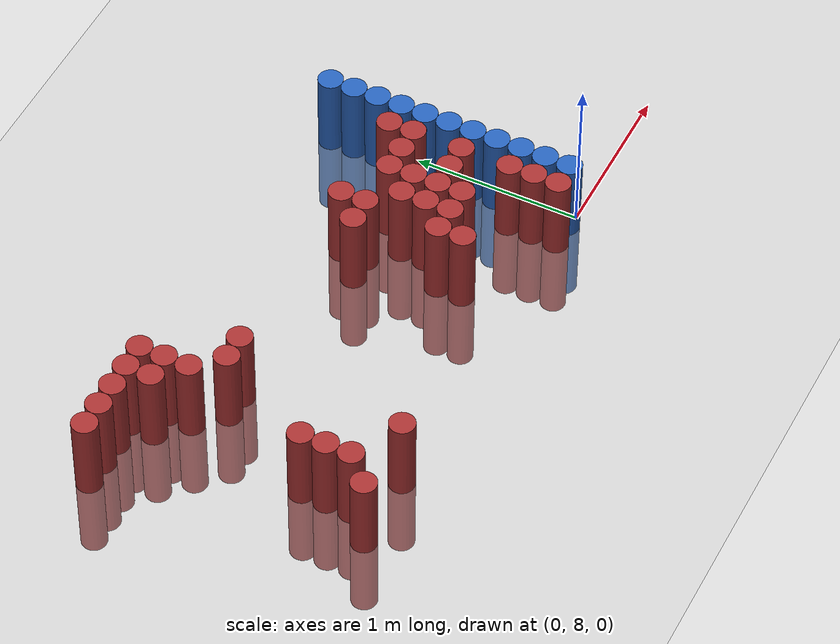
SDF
<sdf version="1.6">
 <world name="default">
  <model name="ground_plane">
   <static>1</static>
   <link name="link">
    <collision name="collision">
     <geometry><plane><normal>0 0 1</normal><size>100 100</size></plane></geometry>
     <surface><friction><ode><mu>100</mu><mu2>50</mu2></ode></friction></surface>
    </collision>
    <visual name="visual">
     <cast_shadows>0</cast_shadows>
     <geometry><plane><normal>0 0 1</normal><size>100 100</size></plane></geometry>
     <material>
      <script><uri>file://media/materials/scripts/gazebo.material</uri><name>Gazebo/Grey</name></script>
     </material>
    </visual>
   </link>
  </model>
  <model name="unit_cylinder_174">
   <static>1</static>
   <pose>-2.925000 9.525000 0.000000 0.000000 0.000000 0.000000</pose>
   <link name="link">
    <inertial>
     <mass>1</mass>
     <inertia><ixx>0.145833</ixx><ixy>0</ixy><ixz>0</ixz><iyy>0.145833</iyy><iyz>0</iyz><izz>0.125</izz></inertia>
    </inertial>
    <collision name="collision">
     <geometry><cylinder><radius>0.075000</radius><length>1</length></cylinder></geometry>
    </collision>
    <visual name="visual">
     <geometry><cylinder><radius>0.075000</radius><length>1</length></cylinder></geometry>
     <material>
      <ambient>0.648000 0.192000 0.192000 1</ambient>
      <diffuse>0.648000 0.192000 0.192000 1</diffuse>
     </material>
     <material>
      <script><name>Gazebo/Grey</name><uri>file://media/materials/scripts/gazebo.material</uri></script>
     </material>
    </visual>
   </link>
  </model>
  <model name="unit_cylinder_177">
   <static>1</static>
   <pose>-2.775000 9.525000 0.000000 0.000000 0.000000 0.000000</pose>
   <link name="link">
    <inertial>
     <mass>1</mass>
     <inertia><ixx>0.145833</ixx><ixy>0</ixy><ixz>0</ixz><iyy>0.145833</iyy><iyz>0</iyz><izz>0.125</izz></inertia>
    </inertial>
    <collision name="collision">
     <geometry><cylinder><radius>0.075000</radius><length>1</length></cylinder></geometry>
    </collision>
    <visual name="visual">
     <geometry><cylinder><radius>0.075000</radius><length>1</length></cylinder></geometry>
     <material>
      <ambient>0.648000 0.192000 0.192000 1</ambient>
      <diffuse>0.648000 0.192000 0.192000 1</diffuse>
     </material>
     <material>
      <script><name>Gazebo/Grey</name><uri>file://media/materials/scripts/gazebo.material</uri></script>
     </material>
    </visual>
   </link>
  </model>
  <model name="unit_cylinder_178">
   <static>1</static>
   <pose>-2.625000 8.025000 0.000000 0.000000 0.000000 0.000000</pose>
   <link name="link">
    <inertial>
     <mass>1</mass>
     <inertia><ixx>0.145833</ixx><ixy>0</ixy><ixz>0</ixz><iyy>0.145833</iyy><iyz>0</iyz><izz>0.125</izz></inertia>
    </inertial>
    <collision name="collision">
     <geometry><cylinder><radius>0.075000</radius><length>1</length></cylinder></geometry>
    </collision>
    <visual name="visual">
     <geometry><cylinder><radius>0.075000</radius><length>1</length></cylinder></geometry>
     <material>
      <ambient>0.648000 0.192000 0.192000 1</ambient>
      <diffuse>0.648000 0.192000 0.192000 1</diffuse>
     </material>
     <material>
      <script><name>Gazebo/Grey</name><uri>file://media/materials/scripts/gazebo.material</uri></script>
     </material>
    </visual>
   </link>
  </model>
  <model name="unit_cylinder_179">
   <static>1</static>
   <pose>-2.625000 9.525000 0.000000 0.000000 0.000000 0.000000</pose>
   <link name="link">
    <inertial>
     <mass>1</mass>
     <inertia><ixx>0.145833</ixx><ixy>0</ixy><ixz>0</ixz><iyy>0.145833</iyy><iyz>0</iyz><izz>0.125</izz></inertia>
    </inertial>
    <collision name="collision">
     <geometry><cylinder><radius>0.075000</radius><length>1</length></cylinder></geometry>
    </collision>
    <visual name="visual">
     <geometry><cylinder><radius>0.075000</radius><length>1</length></cylinder></geometry>
     <material>
      <ambient>0.648000 0.192000 0.192000 1</ambient>
      <diffuse>0.648000 0.192000 0.192000 1</diffuse>
     </material>
     <material>
      <script><name>Gazebo/Grey</name><uri>file://media/materials/scripts/gazebo.material</uri></script>
     </material>
    </visual>
   </link>
  </model>
  <model name="unit_cylinder_180">
   <static>1</static>
   <pose>-2.475000 8.175000 0.000000 0.000000 0.000000 0.000000</pose>
   <link name="link">
    <inertial>
     <mass>1</mass>
     <inertia><ixx>0.145833</ixx><ixy>0</ixy><ixz>0</ixz><iyy>0.145833</iyy><iyz>0</iyz><izz>0.125</izz></inertia>
    </inertial>
    <collision name="collision">
     <geometry><cylinder><radius>0.075000</radius><length>1</length></cylinder></geometry>
    </collision>
    <visual name="visual">
     <geometry><cylinder><radius>0.075000</radius><length>1</length></cylinder></geometry>
     <material>
      <ambient>0.648000 0.192000 0.192000 1</ambient>
      <diffuse>0.648000 0.192000 0.192000 1</diffuse>
     </material>
     <material>
      <script><name>Gazebo/Grey</name><uri>file://media/materials/scripts/gazebo.material</uri></script>
     </material>
    </visual>
   </link>
  </model>
  <model name="unit_cylinder_181">
   <static>1</static>
   <pose>-2.475000 8.325000 0.000000 0.000000 0.000000 0.000000</pose>
   <link name="link">
    <inertial>
     <mass>1</mass>
     <inertia><ixx>0.145833</ixx><ixy>0</ixy><ixz>0</ixz><iyy>0.145833</iyy><iyz>0</iyz><izz>0.125</izz></inertia>
    </inertial>
    <collision name="collision">
     <geometry><cylinder><radius>0.075000</radius><length>1</length></cylinder></geometry>
    </collision>
    <visual name="visual">
     <geometry><cylinder><radius>0.075000</radius><length>1</length></cylinder></geometry>
     <material>
      <ambient>0.648000 0.192000 0.192000 1</ambient>
      <diffuse>0.648000 0.192000 0.192000 1</diffuse>
     </material>
     <material>
      <script><name>Gazebo/Grey</name><uri>file://media/materials/scripts/gazebo.material</uri></script>
     </material>
    </visual>
   </link>
  </model>
  <model name="unit_cylinder_182">
   <static>1</static>
   <pose>-2.475000 8.475000 0.000000 0.000000 0.000000 0.000000</pose>
   <link name="link">
    <inertial>
     <mass>1</mass>
     <inertia><ixx>0.145833</ixx><ixy>0</ixy><ixz>0</ixz><iyy>0.145833</iyy><iyz>0</iyz><izz>0.125</izz></inertia>
    </inertial>
    <collision name="collision">
     <geometry><cylinder><radius>0.075000</radius><length>1</length></cylinder></geometry>
    </collision>
    <visual name="visual">
     <geometry><cylinder><radius>0.075000</radius><length>1</length></cylinder></geometry>
     <material>
      <ambient>0.648000 0.192000 0.192000 1</ambient>
      <diffuse>0.648000 0.192000 0.192000 1</diffuse>
     </material>
     <material>
      <script><name>Gazebo/Grey</name><uri>file://media/materials/scripts/gazebo.material</uri></script>
     </material>
    </visual>
   </link>
  </model>
  <model name="unit_cylinder_183">
   <static>1</static>
   <pose>-2.475000 9.375000 0.000000 0.000000 0.000000 0.000000</pose>
   <link name="link">
    <inertial>
     <mass>1</mass>
     <inertia><ixx>0.145833</ixx><ixy>0</ixy><ixz>0</ixz><iyy>0.145833</iyy><iyz>0</iyz><izz>0.125</izz></inertia>
    </inertial>
    <collision name="collision">
     <geometry><cylinder><radius>0.075000</radius><length>1</length></cylinder></geometry>
    </collision>
    <visual name="visual">
     <geometry><cylinder><radius>0.075000</radius><length>1</length></cylinder></geometry>
     <material>
      <ambient>0.648000 0.192000 0.192000 1</ambient>
      <diffuse>0.648000 0.192000 0.192000 1</diffuse>
     </material>
     <material>
      <script><name>Gazebo/Grey</name><uri>file://media/materials/scripts/gazebo.material</uri></script>
     </material>
    </visual>
   </link>
  </model>
  <model name="unit_cylinder_184">
   <static>1</static>
   <pose>-2.475000 9.525000 0.000000 0.000000 0.000000 0.000000</pose>
   <link name="link">
    <inertial>
     <mass>1</mass>
     <inertia><ixx>0.145833</ixx><ixy>0</ixy><ixz>0</ixz><iyy>0.145833</iyy><iyz>0</iyz><izz>0.125</izz></inertia>
    </inertial>
    <collision name="collision">
     <geometry><cylinder><radius>0.075000</radius><length>1</length></cylinder></geometry>
    </collision>
    <visual name="visual">
     <geometry><cylinder><radius>0.075000</radius><length>1</length></cylinder></geometry>
     <material>
      <ambient>0.648000 0.192000 0.192000 1</ambient>
      <diffuse>0.648000 0.192000 0.192000 1</diffuse>
     </material>
     <material>
      <script><name>Gazebo/Grey</name><uri>file://media/materials/scripts/gazebo.material</uri></script>
     </material>
    </visual>
   </link>
  </model>
  <model name="unit_cylinder_187">
   <static>1</static>
   <pose>-2.325000 9.225000 0.000000 0.000000 0.000000 0.000000</pose>
   <link name="link">
    <inertial>
     <mass>1</mass>
     <inertia><ixx>0.145833</ixx><ixy>0</ixy><ixz>0</ixz><iyy>0.145833</iyy><iyz>0</iyz><izz>0.125</izz></inertia>
    </inertial>
    <collision name="collision">
     <geometry><cylinder><radius>0.075000</radius><length>1</length></cylinder></geometry>
    </collision>
    <visual name="visual">
     <geometry><cylinder><radius>0.075000</radius><length>1</length></cylinder></geometry>
     <material>
      <ambient>0.648000 0.192000 0.192000 1</ambient>
      <diffuse>0.648000 0.192000 0.192000 1</diffuse>
     </material>
     <material>
      <script><name>Gazebo/Grey</name><uri>file://media/materials/scripts/gazebo.material</uri></script>
     </material>
    </visual>
   </link>
  </model>
  <model name="unit_cylinder_188">
   <static>1</static>
   <pose>-2.325000 9.375000 0.000000 0.000000 0.000000 0.000000</pose>
   <link name="link">
    <inertial>
     <mass>1</mass>
     <inertia><ixx>0.145833</ixx><ixy>0</ixy><ixz>0</ixz><iyy>0.145833</iyy><iyz>0</iyz><izz>0.125</izz></inertia>
    </inertial>
    <collision name="collision">
     <geometry><cylinder><radius>0.075000</radius><length>1</length></cylinder></geometry>
    </collision>
    <visual name="visual">
     <geometry><cylinder><radius>0.075000</radius><length>1</length></cylinder></geometry>
     <material>
      <ambient>0.648000 0.192000 0.192000 1</ambient>
      <diffuse>0.648000 0.192000 0.192000 1</diffuse>
     </material>
     <material>
      <script><name>Gazebo/Grey</name><uri>file://media/materials/scripts/gazebo.material</uri></script>
     </material>
    </visual>
   </link>
  </model>
  <model name="unit_cylinder_189">
   <static>1</static>
   <pose>-2.325000 9.525000 0.000000 0.000000 0.000000 0.000000</pose>
   <link name="link">
    <inertial>
     <mass>1</mass>
     <inertia><ixx>0.145833</ixx><ixy>0</ixy><ixz>0</ixz><iyy>0.145833</iyy><iyz>0</iyz><izz>0.125</izz></inertia>
    </inertial>
    <collision name="collision">
     <geometry><cylinder><radius>0.075000</radius><length>1</length></cylinder></geometry>
    </collision>
    <visual name="visual">
     <geometry><cylinder><radius>0.075000</radius><length>1</length></cylinder></geometry>
     <material>
      <ambient>0.648000 0.192000 0.192000 1</ambient>
      <diffuse>0.648000 0.192000 0.192000 1</diffuse>
     </material>
     <material>
      <script><name>Gazebo/Grey</name><uri>file://media/materials/scripts/gazebo.material</uri></script>
     </material>
    </visual>
   </link>
  </model>
  <model name="unit_cylinder_193">
   <static>1</static>
   <pose>-2.175000 8.025000 0.000000 0.000000 0.000000 0.000000</pose>
   <link name="link">
    <inertial>
     <mass>1</mass>
     <inertia><ixx>0.145833</ixx><ixy>0</ixy><ixz>0</ixz><iyy>0.145833</iyy><iyz>0</iyz><izz>0.125</izz></inertia>
    </inertial>
    <collision name="collision">
     <geometry><cylinder><radius>0.075000</radius><length>1</length></cylinder></geometry>
    </collision>
    <visual name="visual">
     <geometry><cylinder><radius>0.075000</radius><length>1</length></cylinder></geometry>
     <material>
      <ambient>0.648000 0.192000 0.192000 1</ambient>
      <diffuse>0.648000 0.192000 0.192000 1</diffuse>
     </material>
     <material>
      <script><name>Gazebo/Grey</name><uri>file://media/materials/scripts/gazebo.material</uri></script>
     </material>
    </visual>
   </link>
  </model>
  <model name="unit_cylinder_194">
   <static>1</static>
   <pose>-2.175000 9.075000 0.000000 0.000000 0.000000 0.000000</pose>
   <link name="link">
    <inertial>
     <mass>1</mass>
     <inertia><ixx>0.145833</ixx><ixy>0</ixy><ixz>0</ixz><iyy>0.145833</iyy><iyz>0</iyz><izz>0.125</izz></inertia>
    </inertial>
    <collision name="collision">
     <geometry><cylinder><radius>0.075000</radius><length>1</length></cylinder></geometry>
    </collision>
    <visual name="visual">
     <geometry><cylinder><radius>0.075000</radius><length>1</length></cylinder></geometry>
     <material>
      <ambient>0.648000 0.192000 0.192000 1</ambient>
      <diffuse>0.648000 0.192000 0.192000 1</diffuse>
     </material>
     <material>
      <script><name>Gazebo/Grey</name><uri>file://media/materials/scripts/gazebo.material</uri></script>
     </material>
    </visual>
   </link>
  </model>
  <model name="unit_cylinder_200">
   <static>1</static>
   <pose>-2.025000 9.075000 0.000000 0.000000 0.000000 0.000000</pose>
   <link name="link">
    <inertial>
     <mass>1</mass>
     <inertia><ixx>0.145833</ixx><ixy>0</ixy><ixz>0</ixz><iyy>0.145833</iyy><iyz>0</iyz><izz>0.125</izz></inertia>
    </inertial>
    <collision name="collision">
     <geometry><cylinder><radius>0.075000</radius><length>1</length></cylinder></geometry>
    </collision>
    <visual name="visual">
     <geometry><cylinder><radius>0.075000</radius><length>1</length></cylinder></geometry>
     <material>
      <ambient>0.648000 0.192000 0.192000 1</ambient>
      <diffuse>0.648000 0.192000 0.192000 1</diffuse>
     </material>
     <material>
      <script><name>Gazebo/Grey</name><uri>file://media/materials/scripts/gazebo.material</uri></script>
     </material>
    </visual>
   </link>
  </model>
  <model name="unit_cylinder_214">
   <static>1</static>
   <pose>-0.975000 8.925000 0.000000 0.000000 0.000000 0.000000</pose>
   <link name="link">
    <inertial>
     <mass>1</mass>
     <inertia><ixx>0.145833</ixx><ixy>0</ixy><ixz>0</ixz><iyy>0.145833</iyy><iyz>0</iyz><izz>0.125</izz></inertia>
    </inertial>
    <collision name="collision">
     <geometry><cylinder><radius>0.075000</radius><length>1</length></cylinder></geometry>
    </collision>
    <visual name="visual">
     <geometry><cylinder><radius>0.075000</radius><length>1</length></cylinder></geometry>
     <material>
      <ambient>0.648000 0.192000 0.192000 1</ambient>
      <diffuse>0.648000 0.192000 0.192000 1</diffuse>
     </material>
     <material>
      <script><name>Gazebo/Grey</name><uri>file://media/materials/scripts/gazebo.material</uri></script>
     </material>
    </visual>
   </link>
  </model>
  <model name="unit_cylinder_215">
   <static>1</static>
   <pose>-0.825000 8.325000 0.000000 0.000000 0.000000 0.000000</pose>
   <link name="link">
    <inertial>
     <mass>1</mass>
     <inertia><ixx>0.145833</ixx><ixy>0</ixy><ixz>0</ixz><iyy>0.145833</iyy><iyz>0</iyz><izz>0.125</izz></inertia>
    </inertial>
    <collision name="collision">
     <geometry><cylinder><radius>0.075000</radius><length>1</length></cylinder></geometry>
    </collision>
    <visual name="visual">
     <geometry><cylinder><radius>0.075000</radius><length>1</length></cylinder></geometry>
     <material>
      <ambient>0.648000 0.192000 0.192000 1</ambient>
      <diffuse>0.648000 0.192000 0.192000 1</diffuse>
     </material>
     <material>
      <script><name>Gazebo/Grey</name><uri>file://media/materials/scripts/gazebo.material</uri></script>
     </material>
    </visual>
   </link>
  </model>
  <model name="unit_cylinder_216">
   <static>1</static>
   <pose>-0.825000 8.475000 0.000000 0.000000 0.000000 0.000000</pose>
   <link name="link">
    <inertial>
     <mass>1</mass>
     <inertia><ixx>0.145833</ixx><ixy>0</ixy><ixz>0</ixz><iyy>0.145833</iyy><iyz>0</iyz><izz>0.125</izz></inertia>
    </inertial>
    <collision name="collision">
     <geometry><cylinder><radius>0.075000</radius><length>1</length></cylinder></geometry>
    </collision>
    <visual name="visual">
     <geometry><cylinder><radius>0.075000</radius><length>1</length></cylinder></geometry>
     <material>
      <ambient>0.648000 0.192000 0.192000 1</ambient>
      <diffuse>0.648000 0.192000 0.192000 1</diffuse>
     </material>
     <material>
      <script><name>Gazebo/Grey</name><uri>file://media/materials/scripts/gazebo.material</uri></script>
     </material>
    </visual>
   </link>
  </model>
  <model name="unit_cylinder_217">
   <static>1</static>
   <pose>-0.825000 8.925000 0.000000 0.000000 0.000000 0.000000</pose>
   <link name="link">
    <inertial>
     <mass>1</mass>
     <inertia><ixx>0.145833</ixx><ixy>0</ixy><ixz>0</ixz><iyy>0.145833</iyy><iyz>0</iyz><izz>0.125</izz></inertia>
    </inertial>
    <collision name="collision">
     <geometry><cylinder><radius>0.075000</radius><length>1</length></cylinder></geometry>
    </collision>
    <visual name="visual">
     <geometry><cylinder><radius>0.075000</radius><length>1</length></cylinder></geometry>
     <material>
      <ambient>0.648000 0.192000 0.192000 1</ambient>
      <diffuse>0.648000 0.192000 0.192000 1</diffuse>
     </material>
     <material>
      <script><name>Gazebo/Grey</name><uri>file://media/materials/scripts/gazebo.material</uri></script>
     </material>
    </visual>
   </link>
  </model>
  <model name="unit_cylinder_218">
   <static>1</static>
   <pose>-0.825000 9.075000 0.000000 0.000000 0.000000 0.000000</pose>
   <link name="link">
    <inertial>
     <mass>1</mass>
     <inertia><ixx>0.145833</ixx><ixy>0</ixy><ixz>0</ixz><iyy>0.145833</iyy><iyz>0</iyz><izz>0.125</izz></inertia>
    </inertial>
    <collision name="collision">
     <geometry><cylinder><radius>0.075000</radius><length>1</length></cylinder></geometry>
    </collision>
    <visual name="visual">
     <geometry><cylinder><radius>0.075000</radius><length>1</length></cylinder></geometry>
     <material>
      <ambient>0.648000 0.192000 0.192000 1</ambient>
      <diffuse>0.648000 0.192000 0.192000 1</diffuse>
     </material>
     <material>
      <script><name>Gazebo/Grey</name><uri>file://media/materials/scripts/gazebo.material</uri></script>
     </material>
    </visual>
   </link>
  </model>
  <model name="unit_cylinder_220">
   <static>1</static>
   <pose>-0.675000 8.475000 0.000000 0.000000 0.000000 0.000000</pose>
   <link name="link">
    <inertial>
     <mass>1</mass>
     <inertia><ixx>0.145833</ixx><ixy>0</ixy><ixz>0</ixz><iyy>0.145833</iyy><iyz>0</iyz><izz>0.125</izz></inertia>
    </inertial>
    <collision name="collision">
     <geometry><cylinder><radius>0.075000</radius><length>1</length></cylinder></geometry>
    </collision>
    <visual name="visual">
     <geometry><cylinder><radius>0.075000</radius><length>1</length></cylinder></geometry>
     <material>
      <ambient>0.648000 0.192000 0.192000 1</ambient>
      <diffuse>0.648000 0.192000 0.192000 1</diffuse>
     </material>
     <material>
      <script><name>Gazebo/Grey</name><uri>file://media/materials/scripts/gazebo.material</uri></script>
     </material>
    </visual>
   </link>
  </model>
  <model name="unit_cylinder_221">
   <static>1</static>
   <pose>-0.675000 8.625000 0.000000 0.000000 0.000000 0.000000</pose>
   <link name="link">
    <inertial>
     <mass>1</mass>
     <inertia><ixx>0.145833</ixx><ixy>0</ixy><ixz>0</ixz><iyy>0.145833</iyy><iyz>0</iyz><izz>0.125</izz></inertia>
    </inertial>
    <collision name="collision">
     <geometry><cylinder><radius>0.075000</radius><length>1</length></cylinder></geometry>
    </collision>
    <visual name="visual">
     <geometry><cylinder><radius>0.075000</radius><length>1</length></cylinder></geometry>
     <material>
      <ambient>0.648000 0.192000 0.192000 1</ambient>
      <diffuse>0.648000 0.192000 0.192000 1</diffuse>
     </material>
     <material>
      <script><name>Gazebo/Grey</name><uri>file://media/materials/scripts/gazebo.material</uri></script>
     </material>
    </visual>
   </link>
  </model>
  <model name="unit_cylinder_222">
   <static>1</static>
   <pose>-0.675000 8.775000 0.000000 0.000000 0.000000 0.000000</pose>
   <link name="link">
    <inertial>
     <mass>1</mass>
     <inertia><ixx>0.145833</ixx><ixy>0</ixy><ixz>0</ixz><iyy>0.145833</iyy><iyz>0</iyz><izz>0.125</izz></inertia>
    </inertial>
    <collision name="collision">
     <geometry><cylinder><radius>0.075000</radius><length>1</length></cylinder></geometry>
    </collision>
    <visual name="visual">
     <geometry><cylinder><radius>0.075000</radius><length>1</length></cylinder></geometry>
     <material>
      <ambient>0.648000 0.192000 0.192000 1</ambient>
      <diffuse>0.648000 0.192000 0.192000 1</diffuse>
     </material>
     <material>
      <script><name>Gazebo/Grey</name><uri>file://media/materials/scripts/gazebo.material</uri></script>
     </material>
    </visual>
   </link>
  </model>
  <model name="unit_cylinder_224">
   <static>1</static>
   <pose>-0.525000 8.475000 0.000000 0.000000 0.000000 0.000000</pose>
   <link name="link">
    <inertial>
     <mass>1</mass>
     <inertia><ixx>0.145833</ixx><ixy>0</ixy><ixz>0</ixz><iyy>0.145833</iyy><iyz>0</iyz><izz>0.125</izz></inertia>
    </inertial>
    <collision name="collision">
     <geometry><cylinder><radius>0.075000</radius><length>1</length></cylinder></geometry>
    </collision>
    <visual name="visual">
     <geometry><cylinder><radius>0.075000</radius><length>1</length></cylinder></geometry>
     <material>
      <ambient>0.648000 0.192000 0.192000 1</ambient>
      <diffuse>0.648000 0.192000 0.192000 1</diffuse>
     </material>
     <material>
      <script><name>Gazebo/Grey</name><uri>file://media/materials/scripts/gazebo.material</uri></script>
     </material>
    </visual>
   </link>
  </model>
  <model name="unit_cylinder_225">
   <static>1</static>
   <pose>-0.525000 8.625000 0.000000 0.000000 0.000000 0.000000</pose>
   <link name="link">
    <inertial>
     <mass>1</mass>
     <inertia><ixx>0.145833</ixx><ixy>0</ixy><ixz>0</ixz><iyy>0.145833</iyy><iyz>0</iyz><izz>0.125</izz></inertia>
    </inertial>
    <collision name="collision">
     <geometry><cylinder><radius>0.075000</radius><length>1</length></cylinder></geometry>
    </collision>
    <visual name="visual">
     <geometry><cylinder><radius>0.075000</radius><length>1</length></cylinder></geometry>
     <material>
      <ambient>0.648000 0.192000 0.192000 1</ambient>
      <diffuse>0.648000 0.192000 0.192000 1</diffuse>
     </material>
     <material>
      <script><name>Gazebo/Grey</name><uri>file://media/materials/scripts/gazebo.material</uri></script>
     </material>
    </visual>
   </link>
  </model>
  <model name="unit_cylinder_226">
   <static>1</static>
   <pose>-0.525000 8.775000 0.000000 0.000000 0.000000 0.000000</pose>
   <link name="link">
    <inertial>
     <mass>1</mass>
     <inertia><ixx>0.145833</ixx><ixy>0</ixy><ixz>0</ixz><iyy>0.145833</iyy><iyz>0</iyz><izz>0.125</izz></inertia>
    </inertial>
    <collision name="collision">
     <geometry><cylinder><radius>0.075000</radius><length>1</length></cylinder></geometry>
    </collision>
    <visual name="visual">
     <geometry><cylinder><radius>0.075000</radius><length>1</length></cylinder></geometry>
     <material>
      <ambient>0.648000 0.192000 0.192000 1</ambient>
      <diffuse>0.648000 0.192000 0.192000 1</diffuse>
     </material>
     <material>
      <script><name>Gazebo/Grey</name><uri>file://media/materials/scripts/gazebo.material</uri></script>
     </material>
    </visual>
   </link>
  </model>
  <model name="unit_cylinder_227">
   <static>1</static>
   <pose>-0.525000 8.925000 0.000000 0.000000 0.000000 0.000000</pose>
   <link name="link">
    <inertial>
     <mass>1</mass>
     <inertia><ixx>0.145833</ixx><ixy>0</ixy><ixz>0</ixz><iyy>0.145833</iyy><iyz>0</iyz><izz>0.125</izz></inertia>
    </inertial>
    <collision name="collision">
     <geometry><cylinder><radius>0.075000</radius><length>1</length></cylinder></geometry>
    </collision>
    <visual name="visual">
     <geometry><cylinder><radius>0.075000</radius><length>1</length></cylinder></geometry>
     <material>
      <ambient>0.648000 0.192000 0.192000 1</ambient>
      <diffuse>0.648000 0.192000 0.192000 1</diffuse>
     </material>
     <material>
      <script><name>Gazebo/Grey</name><uri>file://media/materials/scripts/gazebo.material</uri></script>
     </material>
    </visual>
   </link>
  </model>
  <model name="unit_cylinder_231">
   <static>1</static>
   <pose>-0.375000 8.625000 0.000000 0.000000 0.000000 0.000000</pose>
   <link name="link">
    <inertial>
     <mass>1</mass>
     <inertia><ixx>0.145833</ixx><ixy>0</ixy><ixz>0</ixz><iyy>0.145833</iyy><iyz>0</iyz><izz>0.125</izz></inertia>
    </inertial>
    <collision name="collision">
     <geometry><cylinder><radius>0.075000</radius><length>1</length></cylinder></geometry>
    </collision>
    <visual name="visual">
     <geometry><cylinder><radius>0.075000</radius><length>1</length></cylinder></geometry>
     <material>
      <ambient>0.648000 0.192000 0.192000 1</ambient>
      <diffuse>0.648000 0.192000 0.192000 1</diffuse>
     </material>
     <material>
      <script><name>Gazebo/Grey</name><uri>file://media/materials/scripts/gazebo.material</uri></script>
     </material>
    </visual>
   </link>
  </model>
  <model name="unit_cylinder_232">
   <static>1</static>
   <pose>-0.375000 8.925000 0.000000 0.000000 0.000000 0.000000</pose>
   <link name="link">
    <inertial>
     <mass>1</mass>
     <inertia><ixx>0.145833</ixx><ixy>0</ixy><ixz>0</ixz><iyy>0.145833</iyy><iyz>0</iyz><izz>0.125</izz></inertia>
    </inertial>
    <collision name="collision">
     <geometry><cylinder><radius>0.075000</radius><length>1</length></cylinder></geometry>
    </collision>
    <visual name="visual">
     <geometry><cylinder><radius>0.075000</radius><length>1</length></cylinder></geometry>
     <material>
      <ambient>0.648000 0.192000 0.192000 1</ambient>
      <diffuse>0.648000 0.192000 0.192000 1</diffuse>
     </material>
     <material>
      <script><name>Gazebo/Grey</name><uri>file://media/materials/scripts/gazebo.material</uri></script>
     </material>
    </visual>
   </link>
  </model>
  <model name="unit_cylinder_239">
   <static>1</static>
   <pose>-0.225000 8.025000 0.000000 0.000000 0.000000 0.000000</pose>
   <link name="link">
    <inertial>
     <mass>1</mass>
     <inertia><ixx>0.145833</ixx><ixy>0</ixy><ixz>0</ixz><iyy>0.145833</iyy><iyz>0</iyz><izz>0.125</izz></inertia>
    </inertial>
    <collision name="collision">
     <geometry><cylinder><radius>0.075000</radius><length>1</length></cylinder></geometry>
    </collision>
    <visual name="visual">
     <geometry><cylinder><radius>0.075000</radius><length>1</length></cylinder></geometry>
     <material>
      <ambient>0.648000 0.192000 0.192000 1</ambient>
      <diffuse>0.648000 0.192000 0.192000 1</diffuse>
     </material>
     <material>
      <script><name>Gazebo/Grey</name><uri>file://media/materials/scripts/gazebo.material</uri></script>
     </material>
    </visual>
   </link>
  </model>
  <model name="unit_cylinder_240">
   <static>1</static>
   <pose>-0.225000 8.175000 0.000000 0.000000 0.000000 0.000000</pose>
   <link name="link">
    <inertial>
     <mass>1</mass>
     <inertia><ixx>0.145833</ixx><ixy>0</ixy><ixz>0</ixz><iyy>0.145833</iyy><iyz>0</iyz><izz>0.125</izz></inertia>
    </inertial>
    <collision name="collision">
     <geometry><cylinder><radius>0.075000</radius><length>1</length></cylinder></geometry>
    </collision>
    <visual name="visual">
     <geometry><cylinder><radius>0.075000</radius><length>1</length></cylinder></geometry>
     <material>
      <ambient>0.648000 0.192000 0.192000 1</ambient>
      <diffuse>0.648000 0.192000 0.192000 1</diffuse>
     </material>
     <material>
      <script><name>Gazebo/Grey</name><uri>file://media/materials/scripts/gazebo.material</uri></script>
     </material>
    </visual>
   </link>
  </model>
  <model name="unit_cylinder_241">
   <static>1</static>
   <pose>-0.225000 8.325000 0.000000 0.000000 0.000000 0.000000</pose>
   <link name="link">
    <inertial>
     <mass>1</mass>
     <inertia><ixx>0.145833</ixx><ixy>0</ixy><ixz>0</ixz><iyy>0.145833</iyy><iyz>0</iyz><izz>0.125</izz></inertia>
    </inertial>
    <collision name="collision">
     <geometry><cylinder><radius>0.075000</radius><length>1</length></cylinder></geometry>
    </collision>
    <visual name="visual">
     <geometry><cylinder><radius>0.075000</radius><length>1</length></cylinder></geometry>
     <material>
      <ambient>0.648000 0.192000 0.192000 1</ambient>
      <diffuse>0.648000 0.192000 0.192000 1</diffuse>
     </material>
     <material>
      <script><name>Gazebo/Grey</name><uri>file://media/materials/scripts/gazebo.material</uri></script>
     </material>
    </visual>
   </link>
  </model>
  <model name="unit_cylinder_242">
   <static>1</static>
   <pose>-0.225000 8.625000 0.000000 0.000000 0.000000 0.000000</pose>
   <link name="link">
    <inertial>
     <mass>1</mass>
     <inertia><ixx>0.145833</ixx><ixy>0</ixy><ixz>0</ixz><iyy>0.145833</iyy><iyz>0</iyz><izz>0.125</izz></inertia>
    </inertial>
    <collision name="collision">
     <geometry><cylinder><radius>0.075000</radius><length>1</length></cylinder></geometry>
    </collision>
    <visual name="visual">
     <geometry><cylinder><radius>0.075000</radius><length>1</length></cylinder></geometry>
     <material>
      <ambient>0.648000 0.192000 0.192000 1</ambient>
      <diffuse>0.648000 0.192000 0.192000 1</diffuse>
     </material>
     <material>
      <script><name>Gazebo/Grey</name><uri>file://media/materials/scripts/gazebo.material</uri></script>
     </material>
    </visual>
   </link>
  </model>
  <model name="unit_cylinder_243">
   <static>1</static>
   <pose>-0.225000 8.925000 0.000000 0.000000 0.000000 0.000000</pose>
   <link name="link">
    <inertial>
     <mass>1</mass>
     <inertia><ixx>0.145833</ixx><ixy>0</ixy><ixz>0</ixz><iyy>0.145833</iyy><iyz>0</iyz><izz>0.125</izz></inertia>
    </inertial>
    <collision name="collision">
     <geometry><cylinder><radius>0.075000</radius><length>1</length></cylinder></geometry>
    </collision>
    <visual name="visual">
     <geometry><cylinder><radius>0.075000</radius><length>1</length></cylinder></geometry>
     <material>
      <ambient>0.648000 0.192000 0.192000 1</ambient>
      <diffuse>0.648000 0.192000 0.192000 1</diffuse>
     </material>
     <material>
      <script><name>Gazebo/Grey</name><uri>file://media/materials/scripts/gazebo.material</uri></script>
     </material>
    </visual>
   </link>
  </model>
  <model name="unit_cylinder_244">
   <static>1</static>
   <pose>-0.225000 9.075000 0.000000 0.000000 0.000000 0.000000</pose>
   <link name="link">
    <inertial>
     <mass>1</mass>
     <inertia><ixx>0.145833</ixx><ixy>0</ixy><ixz>0</ixz><iyy>0.145833</iyy><iyz>0</iyz><izz>0.125</izz></inertia>
    </inertial>
    <collision name="collision">
     <geometry><cylinder><radius>0.075000</radius><length>1</length></cylinder></geometry>
    </collision>
    <visual name="visual">
     <geometry><cylinder><radius>0.075000</radius><length>1</length></cylinder></geometry>
     <material>
      <ambient>0.648000 0.192000 0.192000 1</ambient>
      <diffuse>0.648000 0.192000 0.192000 1</diffuse>
     </material>
     <material>
      <script><name>Gazebo/Grey</name><uri>file://media/materials/scripts/gazebo.material</uri></script>
     </material>
    </visual>
   </link>
  </model>
  <model name="unit_cylinder_264">
   <static>1</static>
   <pose>-0.075000 8.025000 0.000000 0.000000 0.000000 0.000000</pose>
   <link name="link">
    <inertial>
     <mass>1</mass>
     <inertia><ixx>0.145833</ixx><ixy>0</ixy><ixz>0</ixz><iyy>0.145833</iyy><iyz>0</iyz><izz>0.125</izz></inertia>
    </inertial>
    <collision name="collision">
     <geometry><cylinder><radius>0.075000</radius><length>1</length></cylinder></geometry>
    </collision>
    <visual name="visual">
     <geometry><cylinder><radius>0.075000</radius><length>1</length></cylinder></geometry>
     <material>
      <ambient>0.152000 0.379000 0.720000 1</ambient>
      <diffuse>0.152000 0.379000 0.720000 1</diffuse>
     </material>
     <material>
      <script><name>Gazebo/Grey</name><uri>file://media/materials/scripts/gazebo.material</uri></script>
     </material>
    </visual>
   </link>
  </model>
  <model name="unit_cylinder_265">
   <static>1</static>
   <pose>-0.075000 8.175000 0.000000 0.000000 0.000000 0.000000</pose>
   <link name="link">
    <inertial>
     <mass>1</mass>
     <inertia><ixx>0.145833</ixx><ixy>0</ixy><ixz>0</ixz><iyy>0.145833</iyy><iyz>0</iyz><izz>0.125</izz></inertia>
    </inertial>
    <collision name="collision">
     <geometry><cylinder><radius>0.075000</radius><length>1</length></cylinder></geometry>
    </collision>
    <visual name="visual">
     <geometry><cylinder><radius>0.075000</radius><length>1</length></cylinder></geometry>
     <material>
      <ambient>0.152000 0.379000 0.720000 1</ambient>
      <diffuse>0.152000 0.379000 0.720000 1</diffuse>
     </material>
     <material>
      <script><name>Gazebo/Grey</name><uri>file://media/materials/scripts/gazebo.material</uri></script>
     </material>
    </visual>
   </link>
  </model>
  <model name="unit_cylinder_266">
   <static>1</static>
   <pose>-0.075000 8.325000 0.000000 0.000000 0.000000 0.000000</pose>
   <link name="link">
    <inertial>
     <mass>1</mass>
     <inertia><ixx>0.145833</ixx><ixy>0</ixy><ixz>0</ixz><iyy>0.145833</iyy><iyz>0</iyz><izz>0.125</izz></inertia>
    </inertial>
    <collision name="collision">
     <geometry><cylinder><radius>0.075000</radius><length>1</length></cylinder></geometry>
    </collision>
    <visual name="visual">
     <geometry><cylinder><radius>0.075000</radius><length>1</length></cylinder></geometry>
     <material>
      <ambient>0.152000 0.379000 0.720000 1</ambient>
      <diffuse>0.152000 0.379000 0.720000 1</diffuse>
     </material>
     <material>
      <script><name>Gazebo/Grey</name><uri>file://media/materials/scripts/gazebo.material</uri></script>
     </material>
    </visual>
   </link>
  </model>
  <model name="unit_cylinder_267">
   <static>1</static>
   <pose>-0.075000 8.475000 0.000000 0.000000 0.000000 0.000000</pose>
   <link name="link">
    <inertial>
     <mass>1</mass>
     <inertia><ixx>0.145833</ixx><ixy>0</ixy><ixz>0</ixz><iyy>0.145833</iyy><iyz>0</iyz><izz>0.125</izz></inertia>
    </inertial>
    <collision name="collision">
     <geometry><cylinder><radius>0.075000</radius><length>1</length></cylinder></geometry>
    </collision>
    <visual name="visual">
     <geometry><cylinder><radius>0.075000</radius><length>1</length></cylinder></geometry>
     <material>
      <ambient>0.152000 0.379000 0.720000 1</ambient>
      <diffuse>0.152000 0.379000 0.720000 1</diffuse>
     </material>
     <material>
      <script><name>Gazebo/Grey</name><uri>file://media/materials/scripts/gazebo.material</uri></script>
     </material>
    </visual>
   </link>
  </model>
  <model name="unit_cylinder_268">
   <static>1</static>
   <pose>-0.075000 8.625000 0.000000 0.000000 0.000000 0.000000</pose>
   <link name="link">
    <inertial>
     <mass>1</mass>
     <inertia><ixx>0.145833</ixx><ixy>0</ixy><ixz>0</ixz><iyy>0.145833</iyy><iyz>0</iyz><izz>0.125</izz></inertia>
    </inertial>
    <collision name="collision">
     <geometry><cylinder><radius>0.075000</radius><length>1</length></cylinder></geometry>
    </collision>
    <visual name="visual">
     <geometry><cylinder><radius>0.075000</radius><length>1</length></cylinder></geometry>
     <material>
      <ambient>0.152000 0.379000 0.720000 1</ambient>
      <diffuse>0.152000 0.379000 0.720000 1</diffuse>
     </material>
     <material>
      <script><name>Gazebo/Grey</name><uri>file://media/materials/scripts/gazebo.material</uri></script>
     </material>
    </visual>
   </link>
  </model>
  <model name="unit_cylinder_269">
   <static>1</static>
   <pose>-0.075000 8.775000 0.000000 0.000000 0.000000 0.000000</pose>
   <link name="link">
    <inertial>
     <mass>1</mass>
     <inertia><ixx>0.145833</ixx><ixy>0</ixy><ixz>0</ixz><iyy>0.145833</iyy><iyz>0</iyz><izz>0.125</izz></inertia>
    </inertial>
    <collision name="collision">
     <geometry><cylinder><radius>0.075000</radius><length>1</length></cylinder></geometry>
    </collision>
    <visual name="visual">
     <geometry><cylinder><radius>0.075000</radius><length>1</length></cylinder></geometry>
     <material>
      <ambient>0.152000 0.379000 0.720000 1</ambient>
      <diffuse>0.152000 0.379000 0.720000 1</diffuse>
     </material>
     <material>
      <script><name>Gazebo/Grey</name><uri>file://media/materials/scripts/gazebo.material</uri></script>
     </material>
    </visual>
   </link>
  </model>
  <model name="unit_cylinder_270">
   <static>1</static>
   <pose>-0.075000 8.925000 0.000000 0.000000 0.000000 0.000000</pose>
   <link name="link">
    <inertial>
     <mass>1</mass>
     <inertia><ixx>0.145833</ixx><ixy>0</ixy><ixz>0</ixz><iyy>0.145833</iyy><iyz>0</iyz><izz>0.125</izz></inertia>
    </inertial>
    <collision name="collision">
     <geometry><cylinder><radius>0.075000</radius><length>1</length></cylinder></geometry>
    </collision>
    <visual name="visual">
     <geometry><cylinder><radius>0.075000</radius><length>1</length></cylinder></geometry>
     <material>
      <ambient>0.152000 0.379000 0.720000 1</ambient>
      <diffuse>0.152000 0.379000 0.720000 1</diffuse>
     </material>
     <material>
      <script><name>Gazebo/Grey</name><uri>file://media/materials/scripts/gazebo.material</uri></script>
     </material>
    </visual>
   </link>
  </model>
  <model name="unit_cylinder_271">
   <static>1</static>
   <pose>-0.075000 9.075000 0.000000 0.000000 0.000000 0.000000</pose>
   <link name="link">
    <inertial>
     <mass>1</mass>
     <inertia><ixx>0.145833</ixx><ixy>0</ixy><ixz>0</ixz><iyy>0.145833</iyy><iyz>0</iyz><izz>0.125</izz></inertia>
    </inertial>
    <collision name="collision">
     <geometry><cylinder><radius>0.075000</radius><length>1</length></cylinder></geometry>
    </collision>
    <visual name="visual">
     <geometry><cylinder><radius>0.075000</radius><length>1</length></cylinder></geometry>
     <material>
      <ambient>0.152000 0.379000 0.720000 1</ambient>
      <diffuse>0.152000 0.379000 0.720000 1</diffuse>
     </material>
     <material>
      <script><name>Gazebo/Grey</name><uri>file://media/materials/scripts/gazebo.material</uri></script>
     </material>
    </visual>
   </link>
  </model>
  <model name="unit_cylinder_272">
   <static>1</static>
   <pose>-0.075000 9.225000 0.000000 0.000000 0.000000 0.000000</pose>
   <link name="link">
    <inertial>
     <mass>1</mass>
     <inertia><ixx>0.145833</ixx><ixy>0</ixy><ixz>0</ixz><iyy>0.145833</iyy><iyz>0</iyz><izz>0.125</izz></inertia>
    </inertial>
    <collision name="collision">
     <geometry><cylinder><radius>0.075000</radius><length>1</length></cylinder></geometry>
    </collision>
    <visual name="visual">
     <geometry><cylinder><radius>0.075000</radius><length>1</length></cylinder></geometry>
     <material>
      <ambient>0.152000 0.379000 0.720000 1</ambient>
      <diffuse>0.152000 0.379000 0.720000 1</diffuse>
     </material>
     <material>
      <script><name>Gazebo/Grey</name><uri>file://media/materials/scripts/gazebo.material</uri></script>
     </material>
    </visual>
   </link>
  </model>
  <model name="unit_cylinder_273">
   <static>1</static>
   <pose>-0.075000 9.375000 0.000000 0.000000 0.000000 0.000000</pose>
   <link name="link">
    <inertial>
     <mass>1</mass>
     <inertia><ixx>0.145833</ixx><ixy>0</ixy><ixz>0</ixz><iyy>0.145833</iyy><iyz>0</iyz><izz>0.125</izz></inertia>
    </inertial>
    <collision name="collision">
     <geometry><cylinder><radius>0.075000</radius><length>1</length></cylinder></geometry>
    </collision>
    <visual name="visual">
     <geometry><cylinder><radius>0.075000</radius><length>1</length></cylinder></geometry>
     <material>
      <ambient>0.152000 0.379000 0.720000 1</ambient>
      <diffuse>0.152000 0.379000 0.720000 1</diffuse>
     </material>
     <material>
      <script><name>Gazebo/Grey</name><uri>file://media/materials/scripts/gazebo.material</uri></script>
     </material>
    </visual>
   </link>
  </model>
  <model name="unit_cylinder_274">
   <static>1</static>
   <pose>-0.075000 9.525000 0.000000 0.000000 0.000000 0.000000</pose>
   <link name="link">
    <inertial>
     <mass>1</mass>
     <inertia><ixx>0.145833</ixx><ixy>0</ixy><ixz>0</ixz><iyy>0.145833</iyy><iyz>0</iyz><izz>0.125</izz></inertia>
    </inertial>
    <collision name="collision">
     <geometry><cylinder><radius>0.075000</radius><length>1</length></cylinder></geometry>
    </collision>
    <visual name="visual">
     <geometry><cylinder><radius>0.075000</radius><length>1</length></cylinder></geometry>
     <material>
      <ambient>0.152000 0.379000 0.720000 1</ambient>
      <diffuse>0.152000 0.379000 0.720000 1</diffuse>
     </material>
     <material>
      <script><name>Gazebo/Grey</name><uri>file://media/materials/scripts/gazebo.material</uri></script>
     </material>
    </visual>
   </link>
  </model>
 </world>
</sdf>
